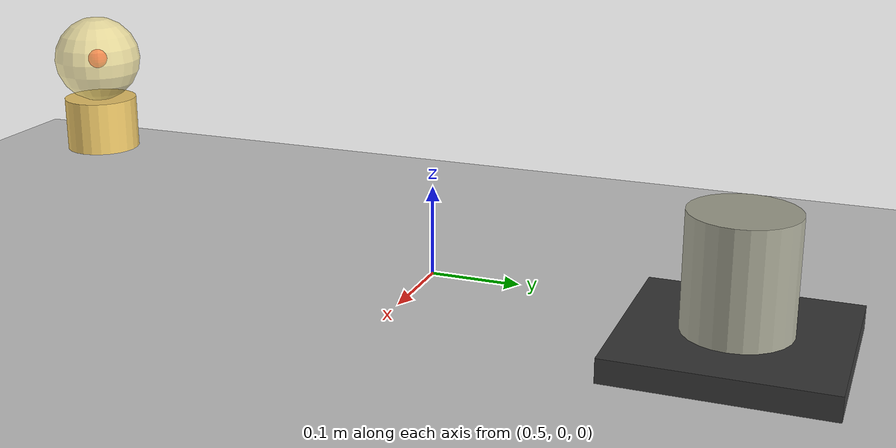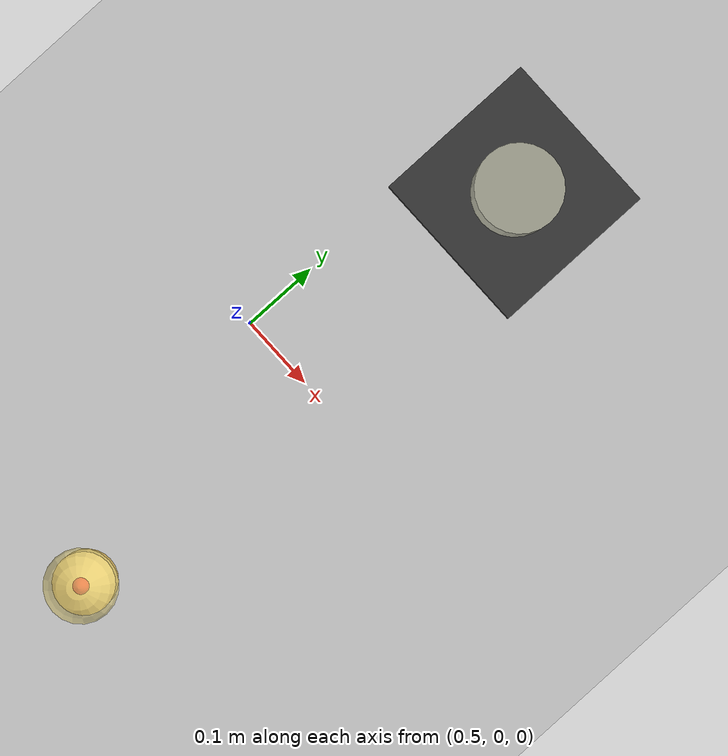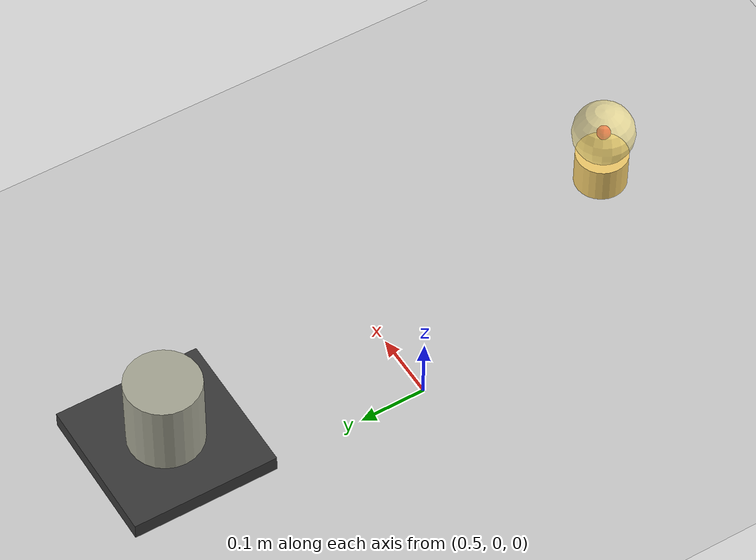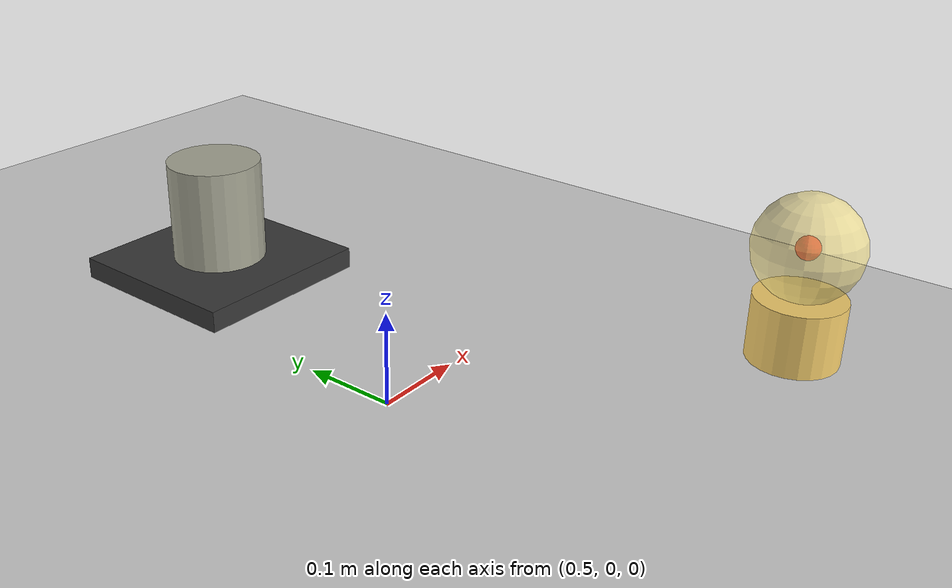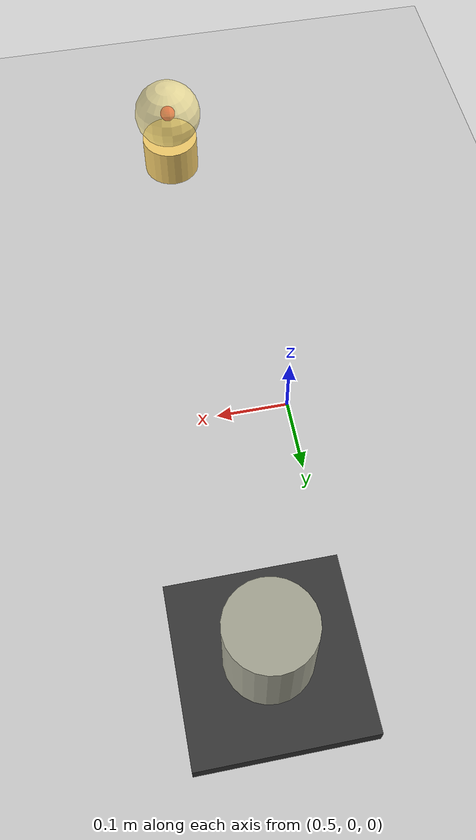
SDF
<?xml version="1.0"?>
<sdf version="1.6">
  <world name="default">
    <!-- 包含Gazebo的默认参数（如光照） -->
    <include>
      <uri>model://sun</uri>
    </include>

    <!-- 添加灰色地板 -->
    <model name="ground_plane">
      <static>true</static>  <!-- 设置为静态物体 -->
      <pose>0 0 0 0 0 0</pose>
      <link name="link">
        <collision name="collision">
          <geometry>
            <plane>
              <normal>0 0 1</normal>  <!-- 平面法线方向（Z轴方向） -->
              <size>10 10</size>      <!-- 平面尺寸 -->
            </plane>
          </geometry>
        </collision>
        <visual name="visual">
          <geometry>
            <plane>
              <normal>0 0 1</normal>
              <size>10 10</size>
            </plane>
          </geometry>
          <material>
            <ambient>0.8 0.8 0.8 1</ambient>  <!-- 灰色材质 -->
          </material>
        </visual>
      </link>
    </model>

    <!-- 添加无重量小球，作为灯泡中心目标点 -->
    <model name="weightless_ball">
      <pose>0.6 -0.35 0.235 0 0 0</pose>
      <link name="ball_link">
        <!-- 关闭重力影响 -->
        <gravity>0</gravity>

        <!-- 定义视觉外观 -->
        <visual name="visual">
          <geometry>
            <sphere>
              <radius>0.01</radius>
            </sphere>
          </geometry>
          <material>
            <ambient>1 0 0 1</ambient>  <!-- 红色 -->
          </material>
        </visual>

        <!-- 设置极小的质量避免零值问题 -->
        <inertial>
          <mass>0.0000001</mass>
          <inertia>
            <ixx>0.0000001</ixx>
            <ixy>0</ixy>
            <ixz>0</ixz>
            <iyy>0.0000001</iyy>
            <iyz>0</iyz>
            <izz>0.0000001</izz>
          </inertia>
        </inertial>
      </link>
    </model>

    <!-- 灯泡底座：静态地面灯座，供动态灯泡放置和对准 -->
    <model name="light_bulb_fixture">
      <static>true</static>
      <pose>0.6 0.35 0 0 0 0</pose>

      <!-- 地面固定底板 -->
      <link name="fixture_mount_link">
        <pose>0 0 0.0125 0 0 0</pose>
        <collision name="mount_collision">
          <geometry>
            <box>
              <size>0.22 0.22 0.025</size>
            </box>
          </geometry>
        </collision>
        <visual name="mount_visual">
          <geometry>
            <box>
              <size>0.22 0.22 0.025</size>
            </box>
          </geometry>
          <material>
            <ambient>0.18 0.18 0.18 1</ambient>
            <diffuse>0.22 0.22 0.22 1</diffuse>
          </material>
        </visual>
      </link>

      <!-- 竖直朝上的灯泡底座/灯座外壳 -->
      <link name="socket_base_link">
        <pose>0 0 0.085 0 0 0</pose>
        <collision name="socket_collision">
          <geometry>
            <cylinder>
              <radius>0.055</radius>
              <length>0.12</length>
            </cylinder>
          </geometry>
          <surface>
            <friction>
              <ode>
                <mu>1.5</mu>
                <mu2>1.5</mu2>
              </ode>
            </friction>
          </surface>
        </collision>
        <visual name="socket_visual">
          <geometry>
            <cylinder>
              <radius>0.055</radius>
              <length>0.12</length>
            </cylinder>
          </geometry>
          <material>
            <ambient>0.55 0.55 0.50 1</ambient>
            <diffuse>0.65 0.65 0.58 1</diffuse>
          </material>
        </visual>
      </link>
    </model>

    <!-- 动态灯泡：可被夹爪抓住并通过 wrist_roll_joint 带动旋转 -->
    <model name="light_bulb">
      <static>false</static>
      <pose>0.6 -0.35 0.165 0 0 0</pose>
      <link name="bulb_body_link">
        <gravity>false</gravity>
        <inertial>
          <pose>0 0 0.035 0 0 0</pose>
          <mass>0.05</mass>
          <inertia>
            <ixx>0.00008</ixx>
            <ixy>0</ixy>
            <ixz>0</ixz>
            <iyy>0.00008</iyy>
            <iyz>0</iyz>
            <izz>0.00005</izz>
          </inertia>
        </inertial>

        <!-- 灯泡螺口，轴线竖直，机械臂从上方夹住后绕 z 轴旋转 -->
        <collision name="thread_collision">
          <pose>0 0 0 0 0 0</pose>
          <geometry>
            <cylinder>
              <radius>0.038</radius>
              <length>0.055</length>
            </cylinder>
          </geometry>
          <surface>
            <contact>
              <collide_bitmask>0</collide_bitmask>
            </contact>
            <friction>
              <ode>
                <mu>2.0</mu>
                <mu2>2.0</mu2>
              </ode>
            </friction>
          </surface>
        </collision>
        <visual name="thread_visual">
          <pose>0 0 0 0 0 0</pose>
          <geometry>
            <cylinder>
              <radius>0.038</radius>
              <length>0.055</length>
            </cylinder>
          </geometry>
          <material>
            <ambient>0.85 0.72 0.35 1</ambient>
            <diffuse>0.95 0.80 0.42 1</diffuse>
          </material>
        </visual>

        <!-- 灯泡玻璃泡。中心与 weightless_ball 对齐，便于复用现有目标点 -->
        <collision name="bulb_collision">
          <pose>0 0 0.07 0 0 0</pose>
          <geometry>
            <sphere>
              <radius>0.045</radius>
            </sphere>
          </geometry>
          <surface>
            <contact>
              <collide_bitmask>0</collide_bitmask>
            </contact>
            <friction>
              <ode>
                <mu>2.0</mu>
                <mu2>2.0</mu2>
              </ode>
            </friction>
          </surface>
        </collision>
        <visual name="bulb_visual">
          <pose>0 0 0.07 0 0 0</pose>
          <geometry>
            <sphere>
              <radius>0.045</radius>
            </sphere>
          </geometry>
          <material>
            <ambient>1.0 0.92 0.55 0.65</ambient>
            <diffuse>1.0 0.92 0.55 0.65</diffuse>
            <emissive>0.35 0.28 0.08 1</emissive>
          </material>
        </visual>
      </link>
    </model>
  </world>
</sdf>
